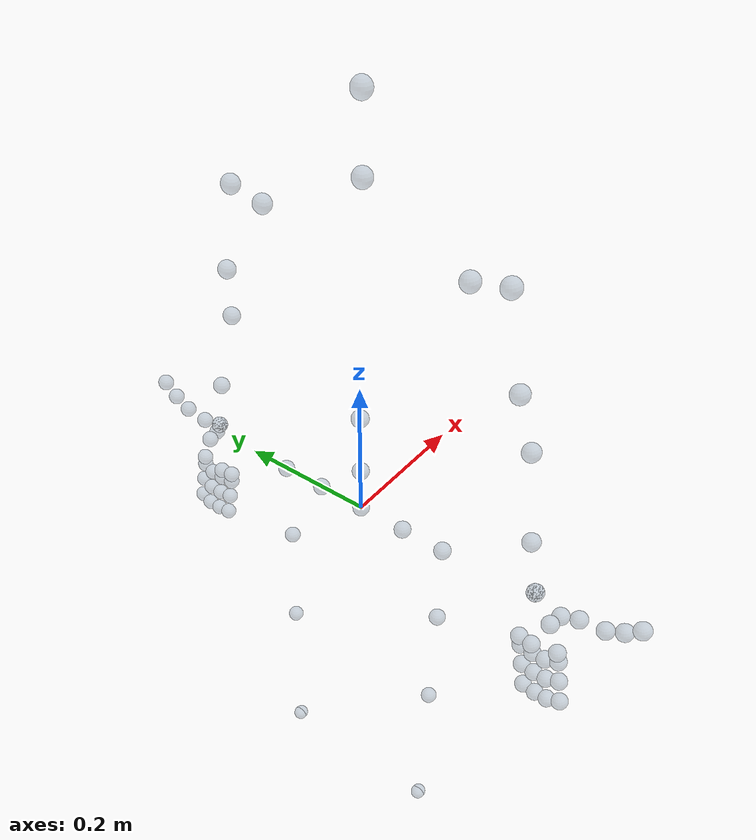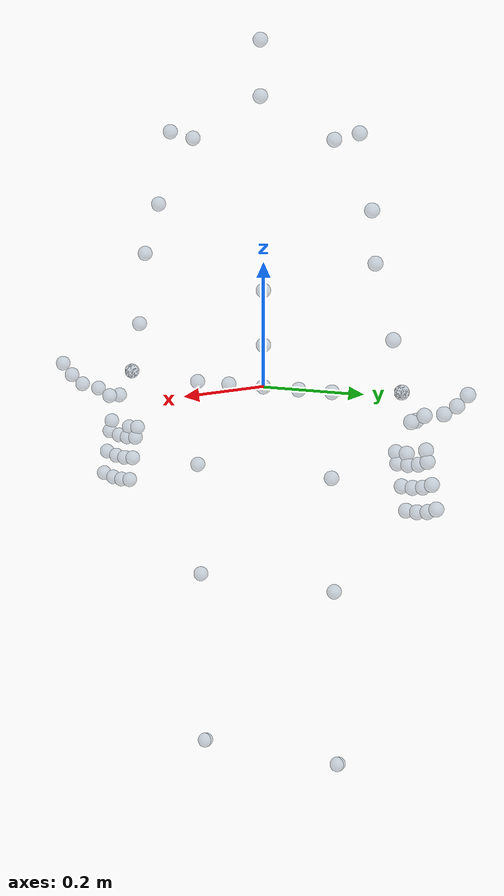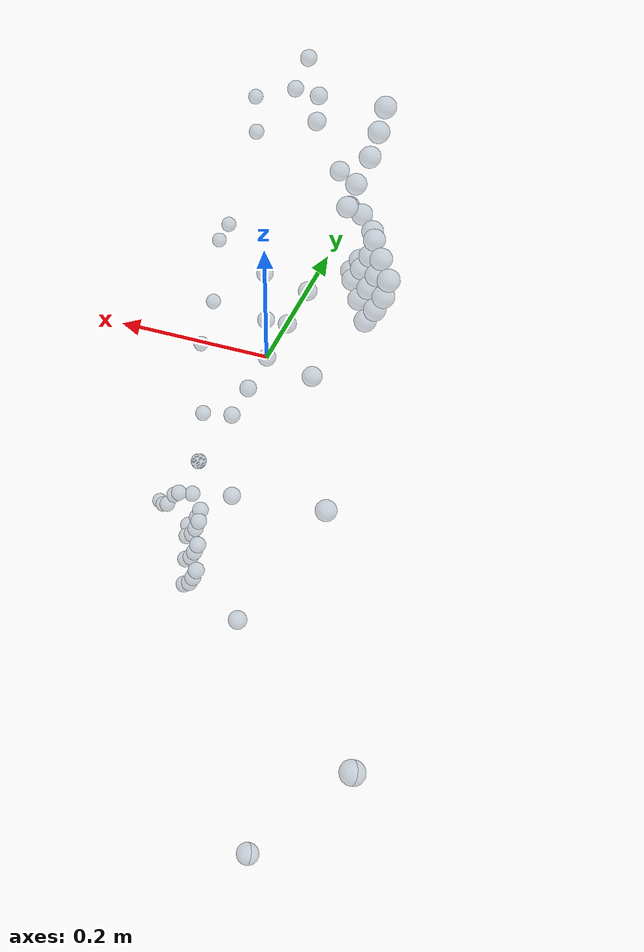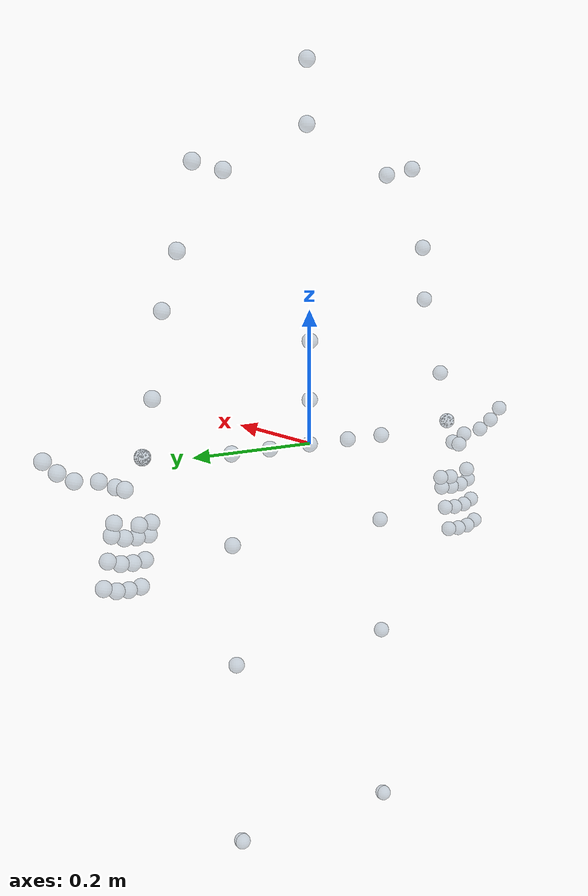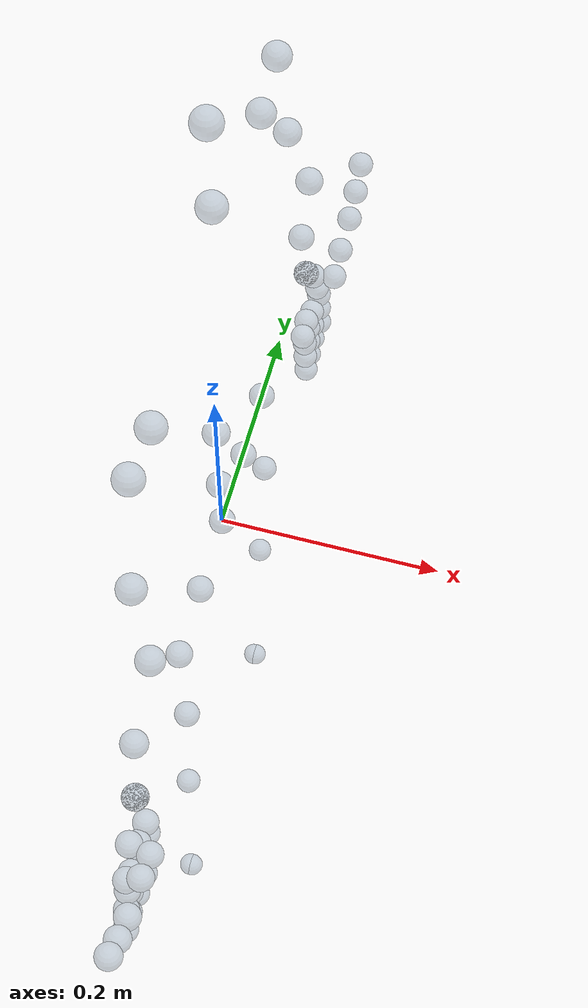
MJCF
<mujoco model="agibot_x2_omnihand_ik">
  <compiler angle="radian" autolimits="true" />
  <option timestep="0.01" gravity="0 0 0" />
  <worldbody>
    <body name="pelvis">
      <inertial pos="0 0 0" mass="0.1" diaginertia="0.0001 0.0001 0.0001" />
      <geom type="sphere" size="0.012" rgba="0.45 0.55 0.65 0.35" contype="0" conaffinity="0" />
      <freejoint name="root" />
      <body name="left_hip_pitch_link" pos="0 0.0713500008 0" quat="1.000000134 0 0 0">
        <inertial pos="0 0 0" mass="0.1" diaginertia="0.0001 0.0001 0.0001" />
        <geom type="sphere" size="0.012" rgba="0.45 0.55 0.65 0.35" contype="0" conaffinity="0" />
        <joint name="left_hip_pitch_joint" type="hinge" pos="0 0 0" axis="0 1.000000134 0" damping="0.01" limited="true" range="-2.703999866 2.555999749" />
        <body name="left_hip_roll_link" pos="-0.0005750000128 0.06570000201 0" quat="1 0 0 0">
          <inertial pos="0 0 0" mass="0.1" diaginertia="0.0001 0.0001 0.0001" />
          <geom type="sphere" size="0.012" rgba="0.45 0.55 0.65 0.35" contype="0" conaffinity="0" />
          <joint name="left_hip_roll_joint" type="hinge" pos="0 0 0" axis="1 0 0" damping="0.01" limited="true" range="-0.2349999811 2.90599957" />
          <body name="left_hip_yaw_link" pos="0.0005750000128 0 -0.1368499994" quat="1.000000134 0 0 0">
            <inertial pos="0 0 0" mass="0.1" diaginertia="0.0001 0.0001 0.0001" />
            <geom type="sphere" size="0.012" rgba="0.45 0.55 0.65 0.35" contype="0" conaffinity="0" />
            <joint name="left_hip_yaw_joint" type="hinge" pos="0 0 0" axis="0 0 1.000000134" damping="0.01" limited="true" range="-1.683999981 3.42999995" />
            <body name="left_knee_link" pos="-0.007660000119 0.0002249926329 -0.1830999851" quat="1.000000134 0 0 0">
              <inertial pos="0 0 0" mass="0.1" diaginertia="0.0001 0.0001 0.0001" />
              <geom type="sphere" size="0.012" rgba="0.45 0.55 0.65 0.35" contype="0" conaffinity="0" />
              <joint name="left_knee_joint" type="hinge" pos="0 0 0" axis="0 1.000000134 0" damping="0.01" limited="true" range="0 2.407300019" />
              <body name="left_ankle_pitch_link" pos="-0.009999999776 -0.0001249164343 -0.2820000052" quat="1.000000134 0 0 0">
                <inertial pos="0 0 0" mass="0.1" diaginertia="0.0001 0.0001 0.0001" />
                <geom type="sphere" size="0.012" rgba="0.45 0.55 0.65 0.35" contype="0" conaffinity="0" />
                <joint name="left_ankle_pitch_joint" type="hinge" pos="0 0 0" axis="0 1.000000134 0" damping="0.01" limited="true" range="-0.8029999271 0.4530000063" />
                <body name="left_ankle_roll_link" pos="-0.001749999821 0 0" quat="1 0 0 0">
                  <inertial pos="0 0 0" mass="0.1" diaginertia="0.0001 0.0001 0.0001" />
                  <geom type="sphere" size="0.012" rgba="0.45 0.55 0.65 0.35" contype="0" conaffinity="0" />
                  <joint name="left_ankle_roll_joint" type="hinge" pos="0 0 0" axis="1 0 0" damping="0.01" limited="true" range="-0.2619999904 0.2619999904" />
                </body>
              </body>
            </body>
          </body>
        </body>
      </body>
      <body name="right_hip_pitch_link" pos="0 -0.0713500008 0" quat="1.000000134 0 0 0">
        <inertial pos="0 0 0" mass="0.1" diaginertia="0.0001 0.0001 0.0001" />
        <geom type="sphere" size="0.012" rgba="0.45 0.55 0.65 0.35" contype="0" conaffinity="0" />
        <joint name="right_hip_pitch_joint" type="hinge" pos="0 0 0" axis="0 1.000000134 0" damping="0.01" limited="true" range="-2.703999866 2.555999749" />
        <body name="right_hip_roll_link" pos="0 -0.06570000201 0" quat="1 0 0 0">
          <inertial pos="0 0 0" mass="0.1" diaginertia="0.0001 0.0001 0.0001" />
          <geom type="sphere" size="0.012" rgba="0.45 0.55 0.65 0.35" contype="0" conaffinity="0" />
          <joint name="right_hip_roll_joint" type="hinge" pos="0 0 0" axis="1 0 0" damping="0.01" limited="true" range="-2.90599957 0.2349999811" />
          <body name="right_hip_yaw_link" pos="0 0 -0.1368499994" quat="1.000000134 0 0 0">
            <inertial pos="0 0 0" mass="0.1" diaginertia="0.0001 0.0001 0.0001" />
            <geom type="sphere" size="0.012" rgba="0.45 0.55 0.65 0.35" contype="0" conaffinity="0" />
            <joint name="right_hip_yaw_joint" type="hinge" pos="0 0 0" axis="0 0 1.000000134" damping="0.01" limited="true" range="-3.42999995 1.683999981" />
            <body name="right_knee_link" pos="-0.007660000119 -0.0002249926329 -0.1830999851" quat="1.000000134 0 0 0">
              <inertial pos="0 0 0" mass="0.1" diaginertia="0.0001 0.0001 0.0001" />
              <geom type="sphere" size="0.012" rgba="0.45 0.55 0.65 0.35" contype="0" conaffinity="0" />
              <joint name="right_knee_joint" type="hinge" pos="0 0 0" axis="0 1.000000134 0" damping="0.01" limited="true" range="0 2.407300019" />
              <body name="right_ankle_pitch_link" pos="-0.009999999776 0.0001249164343 -0.2820000052" quat="1.000000134 0 0 0">
                <inertial pos="0 0 0" mass="0.1" diaginertia="0.0001 0.0001 0.0001" />
                <geom type="sphere" size="0.012" rgba="0.45 0.55 0.65 0.35" contype="0" conaffinity="0" />
                <joint name="right_ankle_pitch_joint" type="hinge" pos="0 0 0" axis="0 1.000000134 0" damping="0.01" limited="true" range="-0.8029999271 0.4530000063" />
                <body name="right_ankle_roll_link" pos="-0.001749999821 0 0" quat="1 0 0 0">
                  <inertial pos="0 0 0" mass="0.1" diaginertia="0.0001 0.0001 0.0001" />
                  <geom type="sphere" size="0.012" rgba="0.45 0.55 0.65 0.35" contype="0" conaffinity="0" />
                  <joint name="right_ankle_roll_joint" type="hinge" pos="0 0 0" axis="1 0 0" damping="0.01" limited="true" range="-0.2624999656 0.2624999656" />
                </body>
              </body>
            </body>
          </body>
        </body>
      </body>
      <body name="waist_yaw_link" pos="0 0 0.06705999374" quat="1.000000134 0 0 0">
        <inertial pos="0 0 0" mass="0.1" diaginertia="0.0001 0.0001 0.0001" />
        <geom type="sphere" size="0.012" rgba="0.45 0.55 0.65 0.35" contype="0" conaffinity="0" />
        <joint name="waist_yaw_joint" type="hinge" pos="0 0 0" axis="0 0 1.000000134" damping="0.01" limited="true" range="-3.42999995 2.381999989" />
        <body name="waist_pitch_link" pos="0 0 0.08801060915" quat="1.000000134 0 0 0">
          <inertial pos="0 0 0" mass="0.1" diaginertia="0.0001 0.0001 0.0001" />
          <geom type="sphere" size="0.012" rgba="0.45 0.55 0.65 0.35" contype="0" conaffinity="0" />
          <joint name="waist_pitch_joint" type="hinge" pos="0 0 0" axis="0 1.000000134 0" damping="0.01" limited="true" range="-0.3140000083 0.3140000083" />
          <body name="torso_link" pos="0 0 0" quat="1 0 0 0">
            <inertial pos="0 0 0" mass="0.1" diaginertia="0.0001 0.0001 0.0001" />
            <geom type="sphere" size="0.012" rgba="0.45 0.55 0.65 0.35" contype="0" conaffinity="0" />
            <joint name="waist_roll_joint" type="hinge" pos="0 0 0" axis="1 0 0" damping="0.01" limited="true" range="-0.4880000017 0.4880000017" />
            <body name="head_yaw_link" pos="0.008347730152 0 0.3093969822" quat="1.000000134 0 0 0">
              <inertial pos="0 0 0" mass="0.1" diaginertia="0.0001 0.0001 0.0001" />
              <geom type="sphere" size="0.012" rgba="0.45 0.55 0.65 0.35" contype="0" conaffinity="0" />
              <joint name="head_yaw_joint" type="hinge" pos="0 0 0" axis="0 0 1.000000134" damping="0.01" limited="true" range="-0.3659999597 0.3659999597" />
              <body name="head_pitch_link" pos="0 0 0.08889997005" quat="1.000000134 0 0 0">
                <inertial pos="0 0 0" mass="0.1" diaginertia="0.0001 0.0001 0.0001" />
                <geom type="sphere" size="0.012" rgba="0.45 0.55 0.65 0.35" contype="0" conaffinity="0" />
                <joint name="head_pitch_joint" type="hinge" pos="0 0 0" axis="0 1.000000134 0" damping="0.01" limited="true" range="-0.3837999958 0.3837999958" />
              </body>
            </body>
            <body name="left_shoulder_pitch_link" pos="0.003299070057 0.1430319995 0.2416479588" quat="0.9945222233 0.104528025 0 0">
              <inertial pos="0 0 0" mass="0.1" diaginertia="0.0001 0.0001 0.0001" />
              <geom type="sphere" size="0.012" rgba="0.45 0.55 0.65 0.35" contype="0" conaffinity="0" />
              <joint name="left_shoulder_pitch_joint" type="hinge" pos="0 0 0" axis="0 1.000000303 0" damping="0.01" limited="true" range="-3.079999597 2.039999904" />
              <body name="left_shoulder_roll_link" pos="-0.0004999910016 0.04949998856 0" quat="1 0 0 0">
                <inertial pos="0 0 0" mass="0.1" diaginertia="0.0001 0.0001 0.0001" />
                <geom type="sphere" size="0.012" rgba="0.45 0.55 0.65 0.35" contype="0" conaffinity="0" />
                <joint name="left_shoulder_roll_joint" type="hinge" pos="0 0 0" axis="1 0 0" damping="0.01" limited="true" range="-0.06100000021 2.992999983" />
                <body name="left_shoulder_yaw_link" pos="0.001224239822 2.980232239e-08 -0.1211949587" quat="0.9999957934 7.012528536e-09 -0.002987748271 3.545492564e-09">
                  <inertial pos="0 0 0" mass="0.1" diaginertia="0.0001 0.0001 0.0001" />
                  <geom type="sphere" size="0.012" rgba="0.45 0.55 0.65 0.35" contype="0" conaffinity="0" />
                  <joint name="left_shoulder_yaw_joint" type="hinge" pos="0 0 0" axis="-8.429370635e-08 2.455136497e-08 1.000000219" damping="0.01" limited="true" range="-2.555999749 2.555999749" />
                  <body name="left_elbow_link" pos="0.01400000043 0.0002000033855 -0.08294999599" quat="0.9999955825 1.437215558e-08 0.002987814949 -3.113581615e-11">
                    <inertial pos="0 0 0" mass="0.1" diaginertia="0.0001 0.0001 0.0001" />
                    <geom type="sphere" size="0.012" rgba="0.45 0.55 0.65 0.35" contype="0" conaffinity="0" />
                    <joint name="left_elbow_joint" type="hinge" pos="0 0 0" axis="0 0.9999999658 -2.084186855e-08" damping="0.01" limited="true" range="-2.355600073 0" />
                    <body name="left_wrist_yaw_link" pos="-0.01327969506 -9.754300117e-05 -0.1205759645" quat="0.9999999658 0 -2.928451925e-22 0">
                      <inertial pos="0 0 0" mass="0.1" diaginertia="0.0001 0.0001 0.0001" />
                      <geom type="sphere" size="0.012" rgba="0.45 0.55 0.65 0.35" contype="0" conaffinity="0" />
                      <joint name="left_wrist_yaw_joint" type="hinge" pos="0 0 0" axis="0 2.107342452e-08 0.9999999658" damping="0.01" limited="true" range="-2.555999749 2.555999749" />
                      <body name="left_wrist_pitch_link" pos="0.0004900009371 0 -0.08199846745" quat="0.9999954982 3.449528435e-09 -0.002987828737 -6.117772955e-12">
                        <inertial pos="0 0 0" mass="0.1" diaginertia="0.0001 0.0001 0.0001" />
                        <geom type="sphere" size="0.012" rgba="0.45 0.55 0.65 0.35" contype="0" conaffinity="0" />
                        <joint name="left_wrist_pitch_joint" type="hinge" pos="0 0 0" axis="-8.429369203e-08 0.9999998815 4.218800682e-09" damping="0.01" limited="true" range="-0.5579999925 0.5579999925" />
                        <body name="left_wrist_roll_link" pos="0 0 0" quat="0.9999997616 0 0 0">
                          <inertial pos="0 0 0" mass="0.1" diaginertia="0.0001 0.0001 0.0001" />
                          <geom type="sphere" size="0.012" rgba="0.45 0.55 0.65 0.35" contype="0" conaffinity="0" />
                          <joint name="left_wrist_roll_joint" type="hinge" pos="0 0 0" axis="0.9999997616 0 0" damping="0.01" limited="true" range="-1.570999925 0.7239999166" />
                          <body name="L_palm" pos="0 0 0" quat="0 1 0 0">
                            <inertial pos="0 0 0" mass="0.1" diaginertia="0.0001 0.0001 0.0001" />
                            <geom type="sphere" size="0.012" rgba="0.45 0.55 0.65 0.35" contype="0" conaffinity="0" />
                            <body name="L_index_abad_link" pos="-0.0006978195161 -0.02695798874 0.09442305565" quat="0.9999997616 0 0 0">
                              <inertial pos="0 0 0" mass="0.1" diaginertia="0.0001 0.0001 0.0001" />
                              <geom type="sphere" size="0.012" rgba="0.45 0.55 0.65 0.35" contype="0" conaffinity="0" />
                              <joint name="L_index_abad_joint" type="hinge" pos="0 0 0" axis="0.9999997616 0 0" damping="0.01" limited="true" range="0 0.164060993" />
                              <body name="L_index_pip_link" pos="0.001024998724 -2.980232239e-08 0.01757496595" quat="0.9999998815 0 0 0">
                                <inertial pos="0 0 0" mass="0.1" diaginertia="0.0001 0.0001 0.0001" />
                                <geom type="sphere" size="0.012" rgba="0.45 0.55 0.65 0.35" contype="0" conaffinity="0" />
                                <joint name="L_index_pip_joint" type="hinge" pos="0 0 0" axis="8.429369203e-08 0.9999998815 -4.280538868e-09" damping="0.01" limited="true" range="0 1.483529997" />
                                <body name="L_index_dip_link" pos="-0.00142659992 2.980232239e-08 0.03600007296" quat="0.9999998815 0 0 0">
                                  <inertial pos="0 0 0" mass="0.1" diaginertia="0.0001 0.0001 0.0001" />
                                  <geom type="sphere" size="0.012" rgba="0.45 0.55 0.65 0.35" contype="0" conaffinity="0" />
                                  <body name="L_index_tip" pos="-0.001309999963 0 0.0384100005" quat="1 0 0 0">
                                    <inertial pos="0 0 0" mass="0.1" diaginertia="0.0001 0.0001 0.0001" />
                                    <geom type="sphere" size="0.012" rgba="0.45 0.55 0.65 0.35" contype="0" conaffinity="0" />
                                  </body>
                                </body>
                              </body>
                            </body>
                            <body name="L_middle_pip_link" pos="-0.002172799315 -0.00795006752 0.1139979959" quat="0.9999998815 0 0 0">
                              <inertial pos="0 0 0" mass="0.1" diaginertia="0.0001 0.0001 0.0001" />
                              <geom type="sphere" size="0.012" rgba="0.45 0.55 0.65 0.35" contype="0" conaffinity="0" />
                              <joint name="L_middle_pip_joint" type="hinge" pos="0 0 0" axis="8.429369203e-08 0.9999998815 -4.280538868e-09" damping="0.01" limited="true" range="0 1.483529997" />
                              <body name="L_middle_dip_link" pos="-0.001426599454 0 0.03600001335" quat="0.9999998815 0 0 0">
                                <inertial pos="0 0 0" mass="0.1" diaginertia="0.0001 0.0001 0.0001" />
                                <geom type="sphere" size="0.012" rgba="0.45 0.55 0.65 0.35" contype="0" conaffinity="0" />
                                <body name="L_middle_tip" pos="-0.001309999963 0 0.0384100005" quat="1 0 0 0">
                                  <inertial pos="0 0 0" mass="0.1" diaginertia="0.0001 0.0001 0.0001" />
                                  <geom type="sphere" size="0.012" rgba="0.45 0.55 0.65 0.35" contype="0" conaffinity="0" />
                                </body>
                              </body>
                            </body>
                            <body name="L_pinky_abad_link" pos="-0.0006978195161 0.03005000949 0.08942300081" quat="0.9999997616 0 0 0">
                              <inertial pos="0 0 0" mass="0.1" diaginertia="0.0001 0.0001 0.0001" />
                              <geom type="sphere" size="0.012" rgba="0.45 0.55 0.65 0.35" contype="0" conaffinity="0" />
                              <joint name="L_pinky_abad_joint" type="hinge" pos="0 0 0" axis="0.9999997616 0 0" damping="0.01" limited="true" range="-0.1850049906 0" />
                              <body name="L_pinky_pip_link" pos="0.001025000587 0 0.01757502556" quat="0.9999998815 0 0 0">
                                <inertial pos="0 0 0" mass="0.1" diaginertia="0.0001 0.0001 0.0001" />
                                <geom type="sphere" size="0.012" rgba="0.45 0.55 0.65 0.35" contype="0" conaffinity="0" />
                                <joint name="L_pinky_pip_joint" type="hinge" pos="0 0 0" axis="8.429369203e-08 0.9999998815 -4.280538868e-09" damping="0.01" limited="true" range="0 1.483529997" />
                                <body name="L_pinky_dip_link" pos="-0.00142659992 0 0.03599995375" quat="0.9999998815 0 0 0">
                                  <inertial pos="0 0 0" mass="0.1" diaginertia="0.0001 0.0001 0.0001" />
                                  <geom type="sphere" size="0.012" rgba="0.45 0.55 0.65 0.35" contype="0" conaffinity="0" />
                                  <body name="L_pinky_tip" pos="-0.001309999963 0 0.0384100005" quat="1 0 0 0">
                                    <inertial pos="0 0 0" mass="0.1" diaginertia="0.0001 0.0001 0.0001" />
                                    <geom type="sphere" size="0.012" rgba="0.45 0.55 0.65 0.35" contype="0" conaffinity="0" />
                                  </body>
                                </body>
                              </body>
                            </body>
                            <body name="L_ring_abad_link" pos="-0.002197799273 0.01105001569 0.09442299604" quat="0.9999997616 0 0 0">
                              <inertial pos="0 0 0" mass="0.1" diaginertia="0.0001 0.0001 0.0001" />
                              <geom type="sphere" size="0.012" rgba="0.45 0.55 0.65 0.35" contype="0" conaffinity="0" />
                              <joint name="L_ring_abad_joint" type="hinge" pos="0 0 0" axis="0.9999997616 0 0" damping="0.01" limited="true" range="-0.169296984 0" />
                              <body name="L_ring_pip_link" pos="0.001024999656 0 0.01757502556" quat="0.9999998815 0 0 0">
                                <inertial pos="0 0 0" mass="0.1" diaginertia="0.0001 0.0001 0.0001" />
                                <geom type="sphere" size="0.012" rgba="0.45 0.55 0.65 0.35" contype="0" conaffinity="0" />
                                <joint name="L_ring_pip_joint" type="hinge" pos="0 0 0" axis="8.429369203e-08 0.9999998815 -4.280538868e-09" damping="0.01" limited="true" range="0 1.483529997" />
                                <body name="L_ring_dip_link" pos="-0.00142659992 0 0.03600007296" quat="0.9999998815 0 0 0">
                                  <inertial pos="0 0 0" mass="0.1" diaginertia="0.0001 0.0001 0.0001" />
                                  <geom type="sphere" size="0.012" rgba="0.45 0.55 0.65 0.35" contype="0" conaffinity="0" />
                                  <body name="L_ring_tip" pos="-0.001309999963 0 0.0384100005" quat="1 0 0 0">
                                    <inertial pos="0 0 0" mass="0.1" diaginertia="0.0001 0.0001 0.0001" />
                                    <geom type="sphere" size="0.012" rgba="0.45 0.55 0.65 0.35" contype="0" conaffinity="0" />
                                  </body>
                                </body>
                              </body>
                            </body>
                            <body name="L_thumb_roll_link" pos="0 -0.0185289979 0.04685103893" quat="0.9999997616 0 0 0">
                              <inertial pos="0 0 0" mass="0.1" diaginertia="0.0001 0.0001 0.0001" />
                              <geom type="sphere" size="0.012" rgba="0.45 0.55 0.65 0.35" contype="0" conaffinity="0" />
                              <joint name="L_thumb_roll_joint" type="hinge" pos="0 0 0" axis="0.9999997616 0 0" damping="0.01" limited="true" range="-1.121369917 0.02967059812" />
                              <body name="L_thumb_abad_link" pos="0.020032987 -0.004292011261 0.0007499456406" quat="0.9999999658 0 -2.922263668e-20 0">
                                <inertial pos="0 0 0" mass="0.1" diaginertia="0.0001 0.0001 0.0001" />
                                <geom type="sphere" size="0.012" rgba="0.45 0.55 0.65 0.35" contype="0" conaffinity="0" />
                                <joint name="L_thumb_abad_joint" type="hinge" pos="0 0 0" axis="0 8.849191675e-10 0.9999999658" damping="0.01" limited="true" range="-0.0453786005 1.642349873" />
                                <body name="L_thumb_mcp_link" pos="-1.862645149e-09 -0.02649998665 -0.005800068378" quat="0.9999997616 0 0 0">
                                  <inertial pos="0 0 0" mass="0.1" diaginertia="0.0001 0.0001 0.0001" />
                                  <geom type="sphere" size="0.012" rgba="0.45 0.55 0.65 0.35" contype="0" conaffinity="0" />
                                  <joint name="L_thumb_mcp_joint" type="hinge" pos="0 0 0" axis="0.9999997616 0 0" damping="0.01" limited="true" range="-0.8412489791 0" />
                                  <body name="L_thumb_pip_link" pos="1.862645149e-09 -0.03622898459 0.002660572529" quat="0.9999997616 0 0 0">
                                    <inertial pos="0 0 0" mass="0.1" diaginertia="0.0001 0.0001 0.0001" />
                                    <geom type="sphere" size="0.012" rgba="0.45 0.55 0.65 0.35" contype="0" conaffinity="0" />
                                    <body name="L_thumb_dip_link" pos="3.725290298e-09 -0.0260540545 -0.008671998978" quat="0.9999997616 0 0 0">
                                      <inertial pos="0 0 0" mass="0.1" diaginertia="0.0001 0.0001 0.0001" />
                                      <geom type="sphere" size="0.012" rgba="0.45 0.55 0.65 0.35" contype="0" conaffinity="0" />
                                      <body name="L_thumb_tip" pos="0 -0.02311000042 -0.01374000032" quat="1 0 0 0">
                                        <inertial pos="0 0 0" mass="0.1" diaginertia="0.0001 0.0001 0.0001" />
                                        <geom type="sphere" size="0.012" rgba="0.45 0.55 0.65 0.35" contype="0" conaffinity="0" />
                                      </body>
                                    </body>
                                  </body>
                                </body>
                              </body>
                            </body>
                          </body>
                        </body>
                      </body>
                    </body>
                  </body>
                </body>
              </body>
            </body>
            <body name="right_shoulder_pitch_link" pos="0.003300939919 -0.1430310011 0.2416479588" quat="0.9945218866 -0.1045299865 0 0">
              <inertial pos="0 0 0" mass="0.1" diaginertia="0.0001 0.0001 0.0001" />
              <geom type="sphere" size="0.012" rgba="0.45 0.55 0.65 0.35" contype="0" conaffinity="0" />
              <joint name="right_shoulder_pitch_joint" type="hinge" pos="0 0 0" axis="0 1.000000134 0" damping="0.01" limited="true" range="-3.079999597 2.039999904" />
              <body name="right_shoulder_roll_link" pos="-0.000500000082 -0.04950001836 0" quat="1 0 7.700150309e-05 0">
                <inertial pos="0 0 0" mass="0.1" diaginertia="0.0001 0.0001 0.0001" />
                <geom type="sphere" size="0.012" rgba="0.45 0.55 0.65 0.35" contype="0" conaffinity="0" />
                <joint name="right_shoulder_roll_joint" type="hinge" pos="0 0 0" axis="1 0 0" damping="0.01" limited="true" range="-2.992999983 0.06100000021" />
                <body name="right_shoulder_yaw_link" pos="0.0004999998491 0 -0.1212000251" quat="1.000000219 0 2.612236374e-21 0">
                  <inertial pos="0 0 0" mass="0.1" diaginertia="0.0001 0.0001 0.0001" />
                  <geom type="sphere" size="0.012" rgba="0.45 0.55 0.65 0.35" contype="0" conaffinity="0" />
                  <joint name="right_shoulder_yaw_joint" type="hinge" pos="0 0 0" axis="-8.429370624e-08 -8.124407547e-09 1.000000219" damping="0.01" limited="true" range="-2.555999749 2.555999749" />
                  <body name="right_elbow_link" pos="0.01400000229 -0.0002000033855 -0.0829500556" quat="1.00000005 0 0 0">
                    <inertial pos="0 0 0" mass="0.1" diaginertia="0.0001 0.0001 0.0001" />
                    <geom type="sphere" size="0.012" rgba="0.45 0.55 0.65 0.35" contype="0" conaffinity="0" />
                    <joint name="right_elbow_joint" type="hinge" pos="0 0 0" axis="-8.429369913e-08 1.00000005 2.185062311e-08" damping="0.01" limited="true" range="-2.355600073 0" />
                    <body name="right_wrist_yaw_link" pos="-0.01400000229 9.751319885e-05 -0.1206940413" quat="1.000000261 -3.955173258e-09 4.214674417e-08 1.636979634e-05">
                      <inertial pos="0 0 0" mass="0.1" diaginertia="0.0001 0.0001 0.0001" />
                      <geom type="sphere" size="0.012" rgba="0.45 0.55 0.65 0.35" contype="0" conaffinity="0" />
                      <joint name="right_wrist_yaw_joint" type="hinge" pos="0 0 0" axis="-8.429370624e-08 -1.352460208e-08 1.000000219" damping="0.01" limited="true" range="-2.555999749 2.555999749" />
                      <body name="right_wrist_pitch_link" pos="-2.328306437e-10 2.980232239e-08 -0.08179998398" quat="1.00000005 6.29236449e-10 6.294215181e-10 -1.635297763e-05">
                        <inertial pos="0 0 0" mass="0.1" diaginertia="0.0001 0.0001 0.0001" />
                        <geom type="sphere" size="0.012" rgba="0.45 0.55 0.65 0.35" contype="0" conaffinity="0" />
                        <joint name="right_wrist_pitch_joint" type="hinge" pos="0 0 0" axis="-8.429369913e-08 1.00000005 2.185062311e-08" damping="0.01" limited="true" range="-0.5579999925 0.5579999925" />
                        <body name="right_wrist_roll_link" pos="0 0 0" quat="1 0 0 0">
                          <inertial pos="0 0 0" mass="0.1" diaginertia="0.0001 0.0001 0.0001" />
                          <geom type="sphere" size="0.012" rgba="0.45 0.55 0.65 0.35" contype="0" conaffinity="0" />
                          <joint name="right_wrist_roll_joint" type="hinge" pos="0 0 0" axis="1 0 0" damping="0.01" limited="true" range="-0.7239999166 1.570999925" />
                          <body name="R_palm" pos="0 0 0" quat="0 1 0 0">
                            <inertial pos="0 0 0" mass="0.1" diaginertia="0.0001 0.0001 0.0001" />
                            <geom type="sphere" size="0.012" rgba="0.45 0.55 0.65 0.35" contype="0" conaffinity="0" />
                            <body name="R_index_abad_link" pos="-0.0006978204474 0.02695798874 0.09442299604" quat="1 0 0 0">
                              <inertial pos="0 0 0" mass="0.1" diaginertia="0.0001 0.0001 0.0001" />
                              <geom type="sphere" size="0.012" rgba="0.45 0.55 0.65 0.35" contype="0" conaffinity="0" />
                              <joint name="R_index_abad_joint" type="hinge" pos="0 0 0" axis="1 0 0" damping="0.01" limited="true" range="-0.164060993 0" />
                              <body name="R_index_pip_link" pos="0.001024999889 -2.980232239e-08 0.01757502556" quat="1.00000005 0 0 0">
                                <inertial pos="0 0 0" mass="0.1" diaginertia="0.0001 0.0001 0.0001" />
                                <geom type="sphere" size="0.012" rgba="0.45 0.55 0.65 0.35" contype="0" conaffinity="0" />
                                <joint name="R_index_pip_joint" type="hinge" pos="0 0 0" axis="8.429369908e-08 1.00000005 2.029140319e-08" damping="0.01" limited="true" range="0 1.483529997" />
                                <body name="R_index_dip_link" pos="-0.00142659992 2.980232239e-08 0.03599989414" quat="1.00000005 0 0 0">
                                  <inertial pos="0 0 0" mass="0.1" diaginertia="0.0001 0.0001 0.0001" />
                                  <geom type="sphere" size="0.012" rgba="0.45 0.55 0.65 0.35" contype="0" conaffinity="0" />
                                  <body name="R_index_tip" pos="-0.001309999963 0 0.0384100005" quat="1 0 0 0">
                                    <inertial pos="0 0 0" mass="0.1" diaginertia="0.0001 0.0001 0.0001" />
                                    <geom type="sphere" size="0.012" rgba="0.45 0.55 0.65 0.35" contype="0" conaffinity="0" />
                                  </body>
                                </body>
                              </body>
                            </body>
                            <body name="R_middle_pip_link" pos="-0.002172800247 0.007950097322 0.1139979362" quat="1.00000005 0 0 0">
                              <inertial pos="0 0 0" mass="0.1" diaginertia="0.0001 0.0001 0.0001" />
                              <geom type="sphere" size="0.012" rgba="0.45 0.55 0.65 0.35" contype="0" conaffinity="0" />
                              <joint name="R_middle_pip_joint" type="hinge" pos="0 0 0" axis="8.429369908e-08 1.00000005 2.029140319e-08" damping="0.01" limited="true" range="0 1.483529997" />
                              <body name="R_middle_dip_link" pos="-0.001426600036 2.980232239e-08 0.03599995375" quat="1.00000005 0 0 0">
                                <inertial pos="0 0 0" mass="0.1" diaginertia="0.0001 0.0001 0.0001" />
                                <geom type="sphere" size="0.012" rgba="0.45 0.55 0.65 0.35" contype="0" conaffinity="0" />
                                <body name="R_middle_tip" pos="-0.001309999963 0 0.0384100005" quat="1 0 0 0">
                                  <inertial pos="0 0 0" mass="0.1" diaginertia="0.0001 0.0001 0.0001" />
                                  <geom type="sphere" size="0.012" rgba="0.45 0.55 0.65 0.35" contype="0" conaffinity="0" />
                                </body>
                              </body>
                            </body>
                            <body name="R_pinky_abad_link" pos="-0.0006978206802 -0.03005000949 0.08942294121" quat="1 0 0 0">
                              <inertial pos="0 0 0" mass="0.1" diaginertia="0.0001 0.0001 0.0001" />
                              <geom type="sphere" size="0.012" rgba="0.45 0.55 0.65 0.35" contype="0" conaffinity="0" />
                              <joint name="R_pinky_abad_joint" type="hinge" pos="0 0 0" axis="1 0 0" damping="0.01" limited="true" range="0 0.1850049906" />
                              <body name="R_pinky_pip_link" pos="0.001025000354 -2.980232239e-08 0.01757502556" quat="1.00000005 0 0 0">
                                <inertial pos="0 0 0" mass="0.1" diaginertia="0.0001 0.0001 0.0001" />
                                <geom type="sphere" size="0.012" rgba="0.45 0.55 0.65 0.35" contype="0" conaffinity="0" />
                                <joint name="R_pinky_pip_joint" type="hinge" pos="0 0 0" axis="8.429369908e-08 1.00000005 2.029140319e-08" damping="0.01" limited="true" range="0 1.483529997" />
                                <body name="R_pinky_dip_link" pos="-0.00142659992 2.980232239e-08 0.03599998355" quat="1.00000005 0 0 0">
                                  <inertial pos="0 0 0" mass="0.1" diaginertia="0.0001 0.0001 0.0001" />
                                  <geom type="sphere" size="0.012" rgba="0.45 0.55 0.65 0.35" contype="0" conaffinity="0" />
                                  <body name="R_pinky_tip" pos="-0.001309999963 0 0.0384100005" quat="1 0 0 0">
                                    <inertial pos="0 0 0" mass="0.1" diaginertia="0.0001 0.0001 0.0001" />
                                    <geom type="sphere" size="0.012" rgba="0.45 0.55 0.65 0.35" contype="0" conaffinity="0" />
                                  </body>
                                </body>
                              </body>
                            </body>
                            <body name="R_ring_abad_link" pos="-0.002197799971 -0.01105001569 0.09442293644" quat="1 0 0 0">
                              <inertial pos="0 0 0" mass="0.1" diaginertia="0.0001 0.0001 0.0001" />
                              <geom type="sphere" size="0.012" rgba="0.45 0.55 0.65 0.35" contype="0" conaffinity="0" />
                              <joint name="R_ring_abad_joint" type="hinge" pos="0 0 0" axis="1 0 0" damping="0.01" limited="true" range="0 0.169296984" />
                              <body name="R_ring_pip_link" pos="0.001024999656 0 0.01757502556" quat="1.00000005 0 0 0">
                                <inertial pos="0 0 0" mass="0.1" diaginertia="0.0001 0.0001 0.0001" />
                                <geom type="sphere" size="0.012" rgba="0.45 0.55 0.65 0.35" contype="0" conaffinity="0" />
                                <joint name="R_ring_pip_joint" type="hinge" pos="0 0 0" axis="8.429369908e-08 1.00000005 2.029140319e-08" damping="0.01" limited="true" range="0 1.483529997" />
                                <body name="R_ring_dip_link" pos="-0.001426599454 2.980232239e-08 0.03599998355" quat="1.00000005 0 0 0">
                                  <inertial pos="0 0 0" mass="0.1" diaginertia="0.0001 0.0001 0.0001" />
                                  <geom type="sphere" size="0.012" rgba="0.45 0.55 0.65 0.35" contype="0" conaffinity="0" />
                                  <body name="R_ring_tip" pos="-0.001309999963 0 0.0384100005" quat="1 0 0 0">
                                    <inertial pos="0 0 0" mass="0.1" diaginertia="0.0001 0.0001 0.0001" />
                                    <geom type="sphere" size="0.012" rgba="0.45 0.55 0.65 0.35" contype="0" conaffinity="0" />
                                  </body>
                                </body>
                              </body>
                            </body>
                            <body name="R_thumb_roll_link" pos="2.328306437e-10 0.0185289681 0.04685097933" quat="1 0 0 0">
                              <inertial pos="0 0 0" mass="0.1" diaginertia="0.0001 0.0001 0.0001" />
                              <geom type="sphere" size="0.012" rgba="0.45 0.55 0.65 0.35" contype="0" conaffinity="0" />
                              <joint name="R_thumb_roll_joint" type="hinge" pos="0 0 0" axis="1 0 0" damping="0.01" limited="true" range="-0.02967059812 1.121369917" />
                              <body name="R_thumb_abad_link" pos="0.02003300004 0.004292011261 0.0007499456406" quat="1.000000219 0 -1.920849143e-17 0">
                                <inertial pos="0 0 0" mass="0.1" diaginertia="0.0001 0.0001 0.0001" />
                                <geom type="sphere" size="0.012" rgba="0.45 0.55 0.65 0.35" contype="0" conaffinity="0" />
                                <joint name="R_thumb_abad_joint" type="hinge" pos="0 0 0" axis="8.429370635e-08 -6.891565534e-09 1.000000219" damping="0.01" limited="true" range="-1.642349873 0.0453786005" />
                                <body name="R_thumb_mcp_link" pos="1.862645149e-09 0.02650001645 -0.005800068378" quat="1 0 0 0">
                                  <inertial pos="0 0 0" mass="0.1" diaginertia="0.0001 0.0001 0.0001" />
                                  <geom type="sphere" size="0.012" rgba="0.45 0.55 0.65 0.35" contype="0" conaffinity="0" />
                                  <joint name="R_thumb_mcp_joint" type="hinge" pos="0 0 0" axis="1 0 0" damping="0.01" limited="true" range="0 0.8412489791" />
                                  <body name="R_thumb_pip_link" pos="-1.862645149e-09 0.0362290144 0.002660632133" quat="1 0 0 0">
                                    <inertial pos="0 0 0" mass="0.1" diaginertia="0.0001 0.0001 0.0001" />
                                    <geom type="sphere" size="0.012" rgba="0.45 0.55 0.65 0.35" contype="0" conaffinity="0" />
                                    <body name="R_thumb_dip_link" pos="0 0.0260540247 -0.008671998978" quat="1 0 0 0">
                                      <inertial pos="0 0 0" mass="0.1" diaginertia="0.0001 0.0001 0.0001" />
                                      <geom type="sphere" size="0.012" rgba="0.45 0.55 0.65 0.35" contype="0" conaffinity="0" />
                                      <body name="R_thumb_tip" pos="0 0.02311000042 -0.01374000032" quat="1 0 0 0">
                                        <inertial pos="0 0 0" mass="0.1" diaginertia="0.0001 0.0001 0.0001" />
                                        <geom type="sphere" size="0.012" rgba="0.45 0.55 0.65 0.35" contype="0" conaffinity="0" />
                                      </body>
                                    </body>
                                  </body>
                                </body>
                              </body>
                            </body>
                          </body>
                        </body>
                      </body>
                    </body>
                  </body>
                </body>
              </body>
            </body>
          </body>
        </body>
      </body>
    </body>
  </worldbody>
  <actuator>
    <motor name="left_hip_pitch_joint" joint="left_hip_pitch_joint" gear="1" ctrllimited="true" ctrlrange="-2.703999866 2.555999749" />
    <motor name="left_hip_roll_joint" joint="left_hip_roll_joint" gear="1" ctrllimited="true" ctrlrange="-0.2349999811 2.90599957" />
    <motor name="left_hip_yaw_joint" joint="left_hip_yaw_joint" gear="1" ctrllimited="true" ctrlrange="-1.683999981 3.42999995" />
    <motor name="left_knee_joint" joint="left_knee_joint" gear="1" ctrllimited="true" ctrlrange="0 2.407300019" />
    <motor name="left_ankle_pitch_joint" joint="left_ankle_pitch_joint" gear="1" ctrllimited="true" ctrlrange="-0.8029999271 0.4530000063" />
    <motor name="left_ankle_roll_joint" joint="left_ankle_roll_joint" gear="1" ctrllimited="true" ctrlrange="-0.2619999904 0.2619999904" />
    <motor name="right_hip_pitch_joint" joint="right_hip_pitch_joint" gear="1" ctrllimited="true" ctrlrange="-2.703999866 2.555999749" />
    <motor name="right_hip_roll_joint" joint="right_hip_roll_joint" gear="1" ctrllimited="true" ctrlrange="-2.90599957 0.2349999811" />
    <motor name="right_hip_yaw_joint" joint="right_hip_yaw_joint" gear="1" ctrllimited="true" ctrlrange="-3.42999995 1.683999981" />
    <motor name="right_knee_joint" joint="right_knee_joint" gear="1" ctrllimited="true" ctrlrange="0 2.407300019" />
    <motor name="right_ankle_pitch_joint" joint="right_ankle_pitch_joint" gear="1" ctrllimited="true" ctrlrange="-0.8029999271 0.4530000063" />
    <motor name="right_ankle_roll_joint" joint="right_ankle_roll_joint" gear="1" ctrllimited="true" ctrlrange="-0.2624999656 0.2624999656" />
    <motor name="waist_yaw_joint" joint="waist_yaw_joint" gear="1" ctrllimited="true" ctrlrange="-3.42999995 2.381999989" />
    <motor name="waist_pitch_joint" joint="waist_pitch_joint" gear="1" ctrllimited="true" ctrlrange="-0.3140000083 0.3140000083" />
    <motor name="waist_roll_joint" joint="waist_roll_joint" gear="1" ctrllimited="true" ctrlrange="-0.4880000017 0.4880000017" />
    <motor name="head_yaw_joint" joint="head_yaw_joint" gear="1" ctrllimited="true" ctrlrange="-0.3659999597 0.3659999597" />
    <motor name="head_pitch_joint" joint="head_pitch_joint" gear="1" ctrllimited="true" ctrlrange="-0.3837999958 0.3837999958" />
    <motor name="left_shoulder_pitch_joint" joint="left_shoulder_pitch_joint" gear="1" ctrllimited="true" ctrlrange="-3.079999597 2.039999904" />
    <motor name="left_shoulder_roll_joint" joint="left_shoulder_roll_joint" gear="1" ctrllimited="true" ctrlrange="-0.06100000021 2.992999983" />
    <motor name="left_shoulder_yaw_joint" joint="left_shoulder_yaw_joint" gear="1" ctrllimited="true" ctrlrange="-2.555999749 2.555999749" />
    <motor name="left_elbow_joint" joint="left_elbow_joint" gear="1" ctrllimited="true" ctrlrange="-2.355600073 0" />
    <motor name="left_wrist_yaw_joint" joint="left_wrist_yaw_joint" gear="1" ctrllimited="true" ctrlrange="-2.555999749 2.555999749" />
    <motor name="left_wrist_pitch_joint" joint="left_wrist_pitch_joint" gear="1" ctrllimited="true" ctrlrange="-0.5579999925 0.5579999925" />
    <motor name="left_wrist_roll_joint" joint="left_wrist_roll_joint" gear="1" ctrllimited="true" ctrlrange="-1.570999925 0.7239999166" />
    <motor name="L_index_abad_joint" joint="L_index_abad_joint" gear="1" ctrllimited="true" ctrlrange="0 0.164060993" />
    <motor name="L_index_pip_joint" joint="L_index_pip_joint" gear="1" ctrllimited="true" ctrlrange="0 1.483529997" />
    <motor name="L_middle_pip_joint" joint="L_middle_pip_joint" gear="1" ctrllimited="true" ctrlrange="0 1.483529997" />
    <motor name="L_pinky_abad_joint" joint="L_pinky_abad_joint" gear="1" ctrllimited="true" ctrlrange="-0.1850049906 0" />
    <motor name="L_pinky_pip_joint" joint="L_pinky_pip_joint" gear="1" ctrllimited="true" ctrlrange="0 1.483529997" />
    <motor name="L_ring_abad_joint" joint="L_ring_abad_joint" gear="1" ctrllimited="true" ctrlrange="-0.169296984 0" />
    <motor name="L_ring_pip_joint" joint="L_ring_pip_joint" gear="1" ctrllimited="true" ctrlrange="0 1.483529997" />
    <motor name="L_thumb_roll_joint" joint="L_thumb_roll_joint" gear="1" ctrllimited="true" ctrlrange="-1.121369917 0.02967059812" />
    <motor name="L_thumb_abad_joint" joint="L_thumb_abad_joint" gear="1" ctrllimited="true" ctrlrange="-0.0453786005 1.642349873" />
    <motor name="L_thumb_mcp_joint" joint="L_thumb_mcp_joint" gear="1" ctrllimited="true" ctrlrange="-0.8412489791 0" />
    <motor name="right_shoulder_pitch_joint" joint="right_shoulder_pitch_joint" gear="1" ctrllimited="true" ctrlrange="-3.079999597 2.039999904" />
    <motor name="right_shoulder_roll_joint" joint="right_shoulder_roll_joint" gear="1" ctrllimited="true" ctrlrange="-2.992999983 0.06100000021" />
    <motor name="right_shoulder_yaw_joint" joint="right_shoulder_yaw_joint" gear="1" ctrllimited="true" ctrlrange="-2.555999749 2.555999749" />
    <motor name="right_elbow_joint" joint="right_elbow_joint" gear="1" ctrllimited="true" ctrlrange="-2.355600073 0" />
    <motor name="right_wrist_yaw_joint" joint="right_wrist_yaw_joint" gear="1" ctrllimited="true" ctrlrange="-2.555999749 2.555999749" />
    <motor name="right_wrist_pitch_joint" joint="right_wrist_pitch_joint" gear="1" ctrllimited="true" ctrlrange="-0.5579999925 0.5579999925" />
    <motor name="right_wrist_roll_joint" joint="right_wrist_roll_joint" gear="1" ctrllimited="true" ctrlrange="-0.7239999166 1.570999925" />
    <motor name="R_index_abad_joint" joint="R_index_abad_joint" gear="1" ctrllimited="true" ctrlrange="-0.164060993 0" />
    <motor name="R_index_pip_joint" joint="R_index_pip_joint" gear="1" ctrllimited="true" ctrlrange="0 1.483529997" />
    <motor name="R_middle_pip_joint" joint="R_middle_pip_joint" gear="1" ctrllimited="true" ctrlrange="0 1.483529997" />
    <motor name="R_pinky_abad_joint" joint="R_pinky_abad_joint" gear="1" ctrllimited="true" ctrlrange="0 0.1850049906" />
    <motor name="R_pinky_pip_joint" joint="R_pinky_pip_joint" gear="1" ctrllimited="true" ctrlrange="0 1.483529997" />
    <motor name="R_ring_abad_joint" joint="R_ring_abad_joint" gear="1" ctrllimited="true" ctrlrange="0 0.169296984" />
    <motor name="R_ring_pip_joint" joint="R_ring_pip_joint" gear="1" ctrllimited="true" ctrlrange="0 1.483529997" />
    <motor name="R_thumb_roll_joint" joint="R_thumb_roll_joint" gear="1" ctrllimited="true" ctrlrange="-0.02967059812 1.121369917" />
    <motor name="R_thumb_abad_joint" joint="R_thumb_abad_joint" gear="1" ctrllimited="true" ctrlrange="-1.642349873 0.0453786005" />
    <motor name="R_thumb_mcp_joint" joint="R_thumb_mcp_joint" gear="1" ctrllimited="true" ctrlrange="0 0.8412489791" />
  </actuator>
</mujoco>
